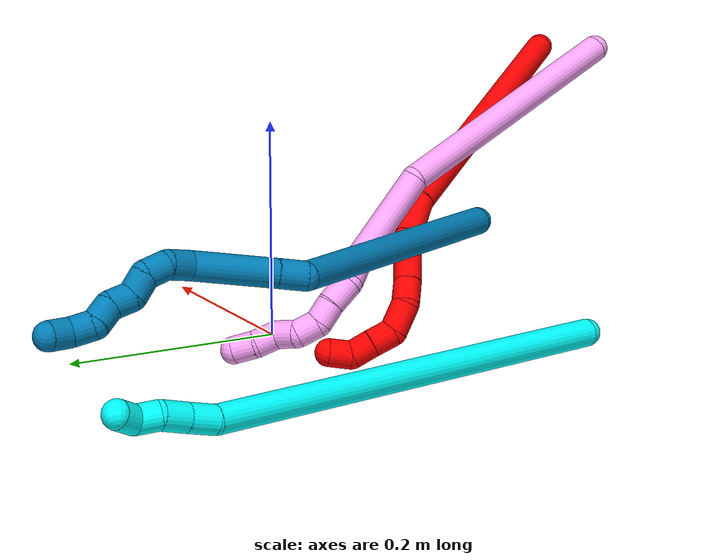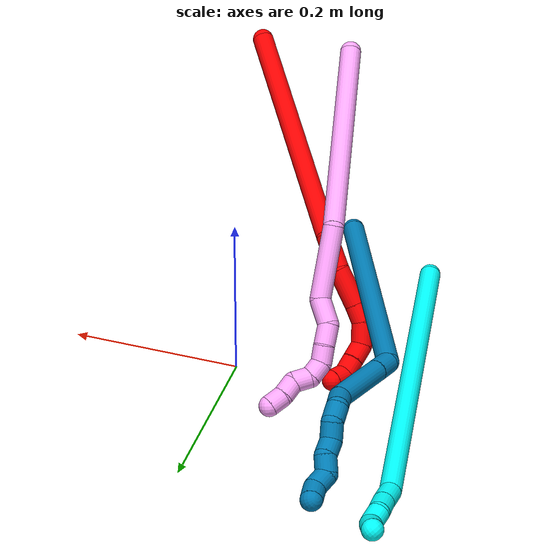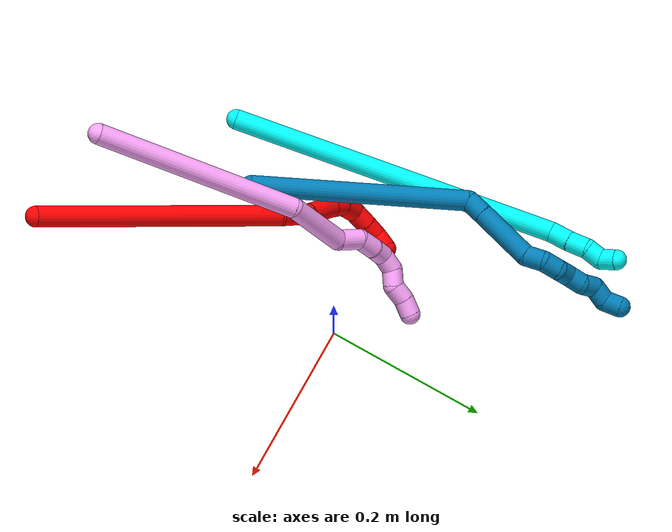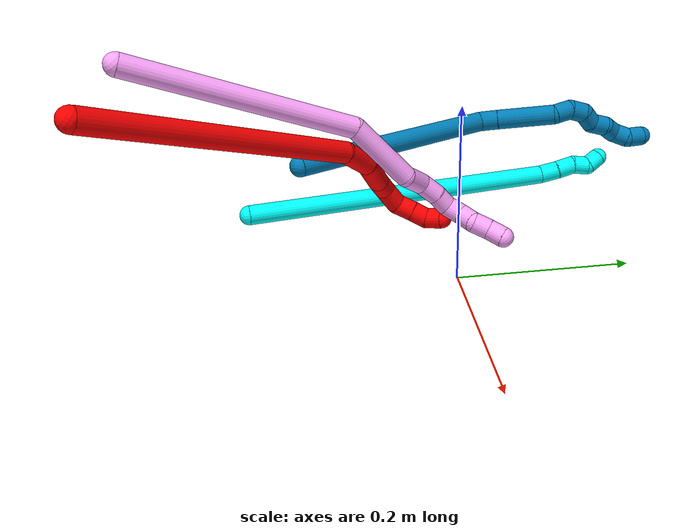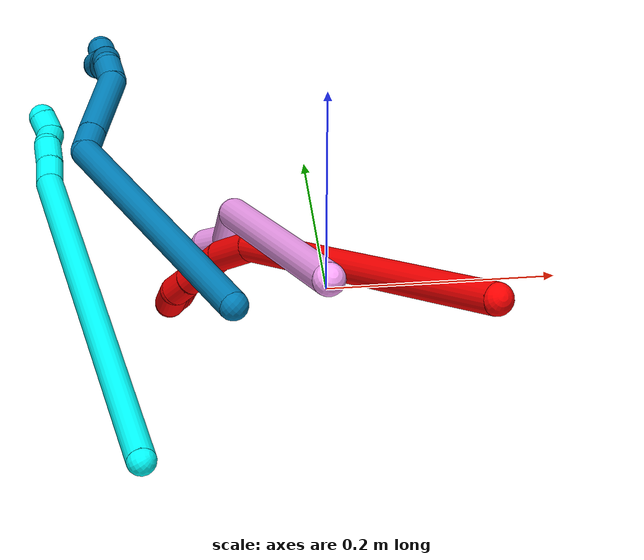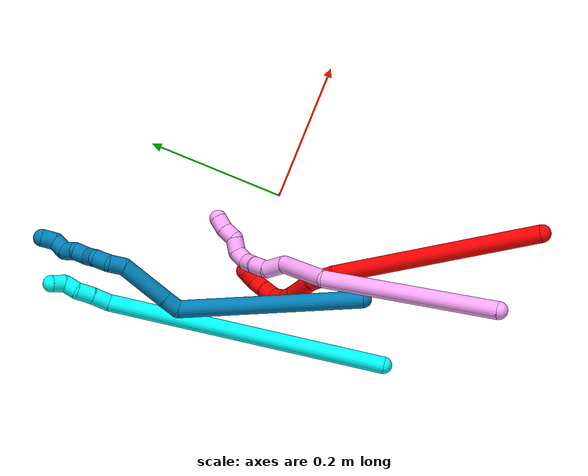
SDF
<sdf version="1.7">
 <world name="default">
  <model name="2">
   <static>0</static>
   <link name="2">
    <collision name="collision-cylinder-e_1_1_4">
     <pose>-0.041145 0.048538 -0.135997 -2.79878 -0.27758 1.35794</pose>
     <geometry><cylinder><radius>0.0125</radius><length>0.300294</length></cylinder></geometry>
     <surface>
      <friction><ode><mu>1.16</mu><mu2>1.16</mu2><slip1>0</slip1><slip2>0</slip2></ode></friction>
      <contact><ode><kp>1e+06</kp><kd>1</kd><max_vel>0</max_vel><min_depth>0.001</min_depth></ode></contact>
     </surface>
    </collision>
    <visual name="visual-cylinder-e_1_1_4">
     <pose>-0.041145 0.048538 -0.135997 -2.79878 -0.27758 1.35794</pose>
     <geometry><cylinder><radius>0.0125</radius><length>0.300294</length></cylinder></geometry>
     <material><ambient>1 0 0 1</ambient></material>
    </visual>
    <collision name="collision-cylinder-e_2_4_5">
     <pose>-0.088996 0.097615 -0.292466 -3.11529 -0.316472 2.9771</pose>
     <geometry><cylinder><radius>0.0125</radius><length>0.043097</length></cylinder></geometry>
     <surface>
      <friction><ode><mu>1.16</mu><mu2>1.16</mu2><slip1>0</slip1><slip2>0</slip2></ode></friction>
      <contact><ode><kp>1e+06</kp><kd>1</kd><max_vel>0</max_vel><min_depth>0.001</min_depth></ode></contact>
     </surface>
    </collision>
    <visual name="visual-cylinder-e_2_4_5">
     <pose>-0.088996 0.097615 -0.292466 -3.11529 -0.316472 2.9771</pose>
     <geometry><cylinder><radius>0.0125</radius><length>0.043097</length></cylinder></geometry>
     <material><ambient>1 0 0 1</ambient></material>
    </visual>
    <collision name="collision-cylinder-e_3_5_6">
     <pose>-0.104742 0.092262 -0.332932 2.85507 -0.409205 -1.92666</pose>
     <geometry><cylinder><radius>0.0125</radius><length>0.04544</length></cylinder></geometry>
     <surface>
      <friction><ode><mu>1.16</mu><mu2>1.16</mu2><slip1>0</slip1><slip2>0</slip2></ode></friction>
      <contact><ode><kp>1e+06</kp><kd>1</kd><max_vel>0</max_vel><min_depth>0.001</min_depth></ode></contact>
     </surface>
    </collision>
    <visual name="visual-cylinder-e_3_5_6">
     <pose>-0.104742 0.092262 -0.332932 2.85507 -0.409205 -1.92666</pose>
     <geometry><cylinder><radius>0.0125</radius><length>0.04544</length></cylinder></geometry>
     <material><ambient>1 0 0 1</ambient></material>
    </visual>
    <collision name="collision-cylinder-e_4_6_7">
     <pose>-0.117583 0.084042 -0.36287 2.91145 -0.356357 -2.00041</pose>
     <geometry><cylinder><radius>0.0125</radius><length>0.021795</length></cylinder></geometry>
     <surface>
      <friction><ode><mu>1.16</mu><mu2>1.16</mu2><slip1>0</slip1><slip2>0</slip2></ode></friction>
      <contact><ode><kp>1e+06</kp><kd>1</kd><max_vel>0</max_vel><min_depth>0.001</min_depth></ode></contact>
     </surface>
    </collision>
    <visual name="visual-cylinder-e_4_6_7">
     <pose>-0.117583 0.084042 -0.36287 2.91145 -0.356357 -2.00041</pose>
     <geometry><cylinder><radius>0.0125</radius><length>0.021795</length></cylinder></geometry>
     <material><ambient>1 0 0 1</ambient></material>
    </visual>
    <collision name="collision-cylinder-e_5_7_8">
     <pose>-0.12054 0.07869 -0.386181 2.91926 0.061577 0.538406</pose>
     <geometry><cylinder><radius>0.0125</radius><length>0.027463</length></cylinder></geometry>
     <surface>
      <friction><ode><mu>1.16</mu><mu2>1.16</mu2><slip1>0</slip1><slip2>0</slip2></ode></friction>
      <contact><ode><kp>1e+06</kp><kd>1</kd><max_vel>0</max_vel><min_depth>0.001</min_depth></ode></contact>
     </surface>
    </collision>
    <visual name="visual-cylinder-e_5_7_8">
     <pose>-0.12054 0.07869 -0.386181 2.91926 0.061577 0.538406</pose>
     <geometry><cylinder><radius>0.0125</radius><length>0.027463</length></cylinder></geometry>
     <material><ambient>1 0 0 1</ambient></material>
    </visual>
    <collision name="collision-cylinder-e_6_8_9">
     <pose>-0.114555 0.078384 -0.40863 -2.85091 0.49689 -2.09493</pose>
     <geometry><cylinder><radius>0.0125</radius><length>0.021565</length></cylinder></geometry>
     <surface>
      <friction><ode><mu>1.16</mu><mu2>1.16</mu2><slip1>0</slip1><slip2>0</slip2></ode></friction>
      <contact><ode><kp>1e+06</kp><kd>1</kd><max_vel>0</max_vel><min_depth>0.001</min_depth></ode></contact>
     </surface>
    </collision>
    <visual name="visual-cylinder-e_6_8_9">
     <pose>-0.114555 0.078384 -0.40863 -2.85091 0.49689 -2.09493</pose>
     <geometry><cylinder><radius>0.0125</radius><length>0.021565</length></cylinder></geometry>
     <material><ambient>1 0 0 1</ambient></material>
    </visual>
    <collision name="collision-cylinder-e_7_9_10">
     <pose>-0.104526 0.083137 -0.426276 -2.90824 0.506941 -2.29178</pose>
     <geometry><cylinder><radius>0.0125</radius><length>0.02014</length></cylinder></geometry>
     <surface>
      <friction><ode><mu>1.16</mu><mu2>1.16</mu2><slip1>0</slip1><slip2>0</slip2></ode></friction>
      <contact><ode><kp>1e+06</kp><kd>1</kd><max_vel>0</max_vel><min_depth>0.001</min_depth></ode></contact>
     </surface>
    </collision>
    <visual name="visual-cylinder-e_7_9_10">
     <pose>-0.104526 0.083137 -0.426276 -2.90824 0.506941 -2.29178</pose>
     <geometry><cylinder><radius>0.0125</radius><length>0.02014</length></cylinder></geometry>
     <material><ambient>1 0 0 1</ambient></material>
    </visual>
    <collision name="collision-cylinder-e_8_10_2">
     <pose>-0.093223 0.091677 -0.439157 -2.15672 0.68779 -1.17716</pose>
     <geometry><cylinder><radius>0.0125</radius><length>0.020207</length></cylinder></geometry>
     <surface>
      <friction><ode><mu>1.16</mu><mu2>1.16</mu2><slip1>0</slip1><slip2>0</slip2></ode></friction>
      <contact><ode><kp>1e+06</kp><kd>1</kd><max_vel>0</max_vel><min_depth>0.001</min_depth></ode></contact>
     </surface>
    </collision>
    <visual name="visual-cylinder-e_8_10_2">
     <pose>-0.093223 0.091677 -0.439157 -2.15672 0.68779 -1.17716</pose>
     <geometry><cylinder><radius>0.0125</radius><length>0.020207</length></cylinder></geometry>
     <material><ambient>1 0 0 1</ambient></material>
    </visual>
    <collision name="collision-sphere-2">
     <pose>-0.086809 0.098181 -0.443474 0 -0 0</pose>
     <geometry><sphere><radius>0.0125</radius></sphere></geometry>
     <surface>
      <friction><ode><mu>1.16</mu><mu2>1.16</mu2><slip1>0</slip1><slip2>0</slip2></ode></friction>
      <contact><ode><kp>1e+06</kp><kd>1</kd><max_vel>0</max_vel><min_depth>0.001</min_depth></ode></contact>
     </surface>
    </collision>
    <visual name="visual-sphere-2">
     <pose>-0.086809 0.098181 -0.443474 0 -0 0</pose>
     <geometry><sphere><radius>0.0125</radius></sphere></geometry>
     <material><ambient>1 0 0 1</ambient></material>
    </visual>
    <collision name="collision-sphere-10">
     <pose>-0.099637 0.085172 -0.434841 0 -0 0</pose>
     <geometry><sphere><radius>0.0125</radius></sphere></geometry>
     <surface>
      <friction><ode><mu>1.16</mu><mu2>1.16</mu2><slip1>0</slip1><slip2>0</slip2></ode></friction>
      <contact><ode><kp>1e+06</kp><kd>1</kd><max_vel>0</max_vel><min_depth>0.001</min_depth></ode></contact>
     </surface>
    </collision>
    <visual name="visual-sphere-10">
     <pose>-0.099637 0.085172 -0.434841 0 -0 0</pose>
     <geometry><sphere><radius>0.0125</radius></sphere></geometry>
     <material><ambient>1 0 0 1</ambient></material>
    </visual>
    <collision name="collision-sphere-9">
     <pose>-0.109415 0.081101 -0.417711 0 -0 0</pose>
     <geometry><sphere><radius>0.0125</radius></sphere></geometry>
     <surface>
      <friction><ode><mu>1.16</mu><mu2>1.16</mu2><slip1>0</slip1><slip2>0</slip2></ode></friction>
      <contact><ode><kp>1e+06</kp><kd>1</kd><max_vel>0</max_vel><min_depth>0.001</min_depth></ode></contact>
     </surface>
    </collision>
    <visual name="visual-sphere-9">
     <pose>-0.109415 0.081101 -0.417711 0 -0 0</pose>
     <geometry><sphere><radius>0.0125</radius></sphere></geometry>
     <material><ambient>1 0 0 1</ambient></material>
    </visual>
    <collision name="collision-sphere-4">
     <pose>-0.082289 0.097076 -0.271995 0 -0 0</pose>
     <geometry><sphere><radius>0.0125</radius></sphere></geometry>
     <surface>
      <friction><ode><mu>1.16</mu><mu2>1.16</mu2><slip1>0</slip1><slip2>0</slip2></ode></friction>
      <contact><ode><kp>1e+06</kp><kd>1</kd><max_vel>0</max_vel><min_depth>0.001</min_depth></ode></contact>
     </surface>
    </collision>
    <visual name="visual-sphere-4">
     <pose>-0.082289 0.097076 -0.271995 0 -0 0</pose>
     <geometry><sphere><radius>0.0125</radius></sphere></geometry>
     <material><ambient>1 0 0 1</ambient></material>
    </visual>
    <collision name="collision-sphere-1">
     <geometry><sphere><radius>0.0125</radius></sphere></geometry>
     <surface>
      <friction><ode><mu>1.16</mu><mu2>1.16</mu2><slip1>0</slip1><slip2>0</slip2></ode></friction>
      <contact><ode><kp>1e+06</kp><kd>1</kd><max_vel>0</max_vel><min_depth>0.001</min_depth></ode></contact>
     </surface>
    </collision>
    <visual name="visual-sphere-1">
     <geometry><sphere><radius>0.0125</radius></sphere></geometry>
     <material><ambient>1 0 0 1</ambient></material>
    </visual>
    <collision name="collision-sphere-8">
     <pose>-0.119695 0.075668 -0.399549 0 -0 0</pose>
     <geometry><sphere><radius>0.0125</radius></sphere></geometry>
     <surface>
      <friction><ode><mu>1.16</mu><mu2>1.16</mu2><slip1>0</slip1><slip2>0</slip2></ode></friction>
      <contact><ode><kp>1e+06</kp><kd>1</kd><max_vel>0</max_vel><min_depth>0.001</min_depth></ode></contact>
     </surface>
    </collision>
    <visual name="visual-sphere-8">
     <pose>-0.119695 0.075668 -0.399549 0 -0 0</pose>
     <geometry><sphere><radius>0.0125</radius></sphere></geometry>
     <material><ambient>1 0 0 1</ambient></material>
    </visual>
    <collision name="collision-sphere-5">
     <pose>-0.095702 0.098153 -0.312937 0 -0 0</pose>
     <geometry><sphere><radius>0.0125</radius></sphere></geometry>
     <surface>
      <friction><ode><mu>1.16</mu><mu2>1.16</mu2><slip1>0</slip1><slip2>0</slip2></ode></friction>
      <contact><ode><kp>1e+06</kp><kd>1</kd><max_vel>0</max_vel><min_depth>0.001</min_depth></ode></contact>
     </surface>
    </collision>
    <visual name="visual-sphere-5">
     <pose>-0.095702 0.098153 -0.312937 0 -0 0</pose>
     <geometry><sphere><radius>0.0125</radius></sphere></geometry>
     <material><ambient>1 0 0 1</ambient></material>
    </visual>
    <collision name="collision-sphere-6">
     <pose>-0.113782 0.086371 -0.352926 0 -0 0</pose>
     <geometry><sphere><radius>0.0125</radius></sphere></geometry>
     <surface>
      <friction><ode><mu>1.16</mu><mu2>1.16</mu2><slip1>0</slip1><slip2>0</slip2></ode></friction>
      <contact><ode><kp>1e+06</kp><kd>1</kd><max_vel>0</max_vel><min_depth>0.001</min_depth></ode></contact>
     </surface>
    </collision>
    <visual name="visual-sphere-6">
     <pose>-0.113782 0.086371 -0.352926 0 -0 0</pose>
     <geometry><sphere><radius>0.0125</radius></sphere></geometry>
     <material><ambient>1 0 0 1</ambient></material>
    </visual>
    <collision name="collision-sphere-7">
     <pose>-0.121385 0.081712 -0.372813 0 -0 0</pose>
     <geometry><sphere><radius>0.0125</radius></sphere></geometry>
     <surface>
      <friction><ode><mu>1.16</mu><mu2>1.16</mu2><slip1>0</slip1><slip2>0</slip2></ode></friction>
      <contact><ode><kp>1e+06</kp><kd>1</kd><max_vel>0</max_vel><min_depth>0.001</min_depth></ode></contact>
     </surface>
    </collision>
    <visual name="visual-sphere-7">
     <pose>-0.121385 0.081712 -0.372813 0 -0 0</pose>
     <geometry><sphere><radius>0.0125</radius></sphere></geometry>
     <material><ambient>1 0 0 1</ambient></material>
    </visual>
    <inertial>
     <pose>-0.066565 0.06437 -0.226715 0 -0 0</pose>
     <mass>0.5</mass>
     <inertia>
      <ixx>0.002566</ixx>
      <ixy>0</ixy>
      <ixz>0</ixz>
      <iyy>0.001896</iyy>
      <iyz>0</iyz>
      <izz>-0.00014</izz>
     </inertia>
    </inertial>
   </link>
   <pose>0.082512 -0.347604 0.234108 0.828165 0.079905 0.260258</pose>
  </model>
  <model name="3">
   <static>0</static>
   <link name="3">
    <collision name="collision-cylinder-e_1_1_4">
     <pose>0.010489 0.190423 0.073465 -1.20259 0.051345 -0.035229</pose>
     <geometry><cylinder><radius>0.0125</radius><length>0.408744</length></cylinder></geometry>
     <surface>
      <friction><ode><mu>1.16</mu><mu2>1.16</mu2><slip1>0</slip1><slip2>0</slip2></ode></friction>
      <contact><ode><kp>1e+06</kp><kd>1</kd><max_vel>0</max_vel><min_depth>0.001</min_depth></ode></contact>
     </surface>
    </collision>
    <visual name="visual-cylinder-e_1_1_4">
     <pose>0.010489 0.190423 0.073465 -1.20259 0.051345 -0.035229</pose>
     <geometry><cylinder><radius>0.0125</radius><length>0.408744</length></cylinder></geometry>
     <material><ambient>0.003922 1 0.996078 1</ambient></material>
    </visual>
    <collision name="collision-cylinder-e_2_4_5">
     <pose>0.022281 0.393508 0.147971 -1.48882 0.102191 -0.094152</pose>
     <geometry><cylinder><radius>0.0125</radius><length>0.025544</length></cylinder></geometry>
     <surface>
      <friction><ode><mu>1.16</mu><mu2>1.16</mu2><slip1>0</slip1><slip2>0</slip2></ode></friction>
      <contact><ode><kp>1e+06</kp><kd>1</kd><max_vel>0</max_vel><min_depth>0.001</min_depth></ode></contact>
     </surface>
    </collision>
    <visual name="visual-cylinder-e_2_4_5">
     <pose>0.022281 0.393508 0.147971 -1.48882 0.102191 -0.094152</pose>
     <geometry><cylinder><radius>0.0125</radius><length>0.025544</length></cylinder></geometry>
     <material><ambient>0.003922 1 0.996078 1</ambient></material>
    </visual>
    <collision name="collision-cylinder-e_3_5_6">
     <pose>0.02579 0.418135 0.150514 -1.44586 0.181021 -0.159805</pose>
     <geometry><cylinder><radius>0.0125</radius><length>0.024516</length></cylinder></geometry>
     <surface>
      <friction><ode><mu>1.16</mu><mu2>1.16</mu2><slip1>0</slip1><slip2>0</slip2></ode></friction>
      <contact><ode><kp>1e+06</kp><kd>1</kd><max_vel>0</max_vel><min_depth>0.001</min_depth></ode></contact>
     </surface>
    </collision>
    <visual name="visual-cylinder-e_3_5_6">
     <pose>0.02579 0.418135 0.150514 -1.44586 0.181021 -0.159805</pose>
     <geometry><cylinder><radius>0.0125</radius><length>0.024516</length></cylinder></geometry>
     <material><ambient>0.003922 1 0.996078 1</ambient></material>
    </visual>
    <collision name="collision-cylinder-e_4_6_7">
     <pose>0.025843 0.439979 0.153786 -1.39352 -0.211477 0.177154</pose>
     <geometry><cylinder><radius>0.0125</radius><length>0.020532</length></cylinder></geometry>
     <surface>
      <friction><ode><mu>1.16</mu><mu2>1.16</mu2><slip1>0</slip1><slip2>0</slip2></ode></friction>
      <contact><ode><kp>1e+06</kp><kd>1</kd><max_vel>0</max_vel><min_depth>0.001</min_depth></ode></contact>
     </surface>
    </collision>
    <visual name="visual-cylinder-e_4_6_7">
     <pose>0.025843 0.439979 0.153786 -1.39352 -0.211477 0.177154</pose>
     <geometry><cylinder><radius>0.0125</radius><length>0.020532</length></cylinder></geometry>
     <material><ambient>0.003922 1 0.996078 1</ambient></material>
    </visual>
    <collision name="collision-cylinder-e_5_7_2">
     <pose>0.02897 0.458527 0.157479 -1.35247 0.536656 -0.434324</pose>
     <geometry><cylinder><radius>0.0125</radius><length>0.020664</length></cylinder></geometry>
     <surface>
      <friction><ode><mu>1.16</mu><mu2>1.16</mu2><slip1>0</slip1><slip2>0</slip2></ode></friction>
      <contact><ode><kp>1e+06</kp><kd>1</kd><max_vel>0</max_vel><min_depth>0.001</min_depth></ode></contact>
     </surface>
    </collision>
    <visual name="visual-cylinder-e_5_7_2">
     <pose>0.02897 0.458527 0.157479 -1.35247 0.536656 -0.434324</pose>
     <geometry><cylinder><radius>0.0125</radius><length>0.020664</length></cylinder></geometry>
     <material><ambient>0.003922 1 0.996078 1</ambient></material>
    </visual>
    <collision name="collision-sphere-2">
     <pose>0.034252 0.467196 0.159403 0 -0 0</pose>
     <geometry><sphere><radius>0.0125</radius></sphere></geometry>
     <surface>
      <friction><ode><mu>1.16</mu><mu2>1.16</mu2><slip1>0</slip1><slip2>0</slip2></ode></friction>
      <contact><ode><kp>1e+06</kp><kd>1</kd><max_vel>0</max_vel><min_depth>0.001</min_depth></ode></contact>
     </surface>
    </collision>
    <visual name="visual-sphere-2">
     <pose>0.034252 0.467196 0.159403 0 -0 0</pose>
     <geometry><sphere><radius>0.0125</radius></sphere></geometry>
     <material><ambient>0.003922 1 0.996078 1</ambient></material>
    </visual>
    <collision name="collision-sphere-7">
     <pose>0.023688 0.449858 0.155556 0 -0 0</pose>
     <geometry><sphere><radius>0.0125</radius></sphere></geometry>
     <surface>
      <friction><ode><mu>1.16</mu><mu2>1.16</mu2><slip1>0</slip1><slip2>0</slip2></ode></friction>
      <contact><ode><kp>1e+06</kp><kd>1</kd><max_vel>0</max_vel><min_depth>0.001</min_depth></ode></contact>
     </surface>
    </collision>
    <visual name="visual-sphere-7">
     <pose>0.023688 0.449858 0.155556 0 -0 0</pose>
     <geometry><sphere><radius>0.0125</radius></sphere></geometry>
     <material><ambient>0.003922 1 0.996078 1</ambient></material>
    </visual>
    <collision name="collision-sphere-6">
     <pose>0.027997 0.430099 0.152016 0 -0 0</pose>
     <geometry><sphere><radius>0.0125</radius></sphere></geometry>
     <surface>
      <friction><ode><mu>1.16</mu><mu2>1.16</mu2><slip1>0</slip1><slip2>0</slip2></ode></friction>
      <contact><ode><kp>1e+06</kp><kd>1</kd><max_vel>0</max_vel><min_depth>0.001</min_depth></ode></contact>
     </surface>
    </collision>
    <visual name="visual-sphere-6">
     <pose>0.027997 0.430099 0.152016 0 -0 0</pose>
     <geometry><sphere><radius>0.0125</radius></sphere></geometry>
     <material><ambient>0.003922 1 0.996078 1</ambient></material>
    </visual>
    <collision name="collision-sphere-5">
     <pose>0.023584 0.406171 0.149011 0 -0 0</pose>
     <geometry><sphere><radius>0.0125</radius></sphere></geometry>
     <surface>
      <friction><ode><mu>1.16</mu><mu2>1.16</mu2><slip1>0</slip1><slip2>0</slip2></ode></friction>
      <contact><ode><kp>1e+06</kp><kd>1</kd><max_vel>0</max_vel><min_depth>0.001</min_depth></ode></contact>
     </surface>
    </collision>
    <visual name="visual-sphere-5">
     <pose>0.023584 0.406171 0.149011 0 -0 0</pose>
     <geometry><sphere><radius>0.0125</radius></sphere></geometry>
     <material><ambient>0.003922 1 0.996078 1</ambient></material>
    </visual>
    <collision name="collision-sphere-1">
     <geometry><sphere><radius>0.0125</radius></sphere></geometry>
     <surface>
      <friction><ode><mu>1.16</mu><mu2>1.16</mu2><slip1>0</slip1><slip2>0</slip2></ode></friction>
      <contact><ode><kp>1e+06</kp><kd>1</kd><max_vel>0</max_vel><min_depth>0.001</min_depth></ode></contact>
     </surface>
    </collision>
    <visual name="visual-sphere-1">
     <geometry><sphere><radius>0.0125</radius></sphere></geometry>
     <material><ambient>0.003922 1 0.996078 1</ambient></material>
    </visual>
    <collision name="collision-sphere-4">
     <pose>0.020978 0.380845 0.14693 0 -0 0</pose>
     <geometry><sphere><radius>0.0125</radius></sphere></geometry>
     <surface>
      <friction><ode><mu>1.16</mu><mu2>1.16</mu2><slip1>0</slip1><slip2>0</slip2></ode></friction>
      <contact><ode><kp>1e+06</kp><kd>1</kd><max_vel>0</max_vel><min_depth>0.001</min_depth></ode></contact>
     </surface>
    </collision>
    <visual name="visual-sphere-4">
     <pose>0.020978 0.380845 0.14693 0 -0 0</pose>
     <geometry><sphere><radius>0.0125</radius></sphere></geometry>
     <material><ambient>0.003922 1 0.996078 1</ambient></material>
    </visual>
    <inertial>
     <pose>0.013236 0.233291 0.08782 0 -0 0</pose>
     <mass>0.5</mass>
     <inertia>
      <ixx>0.005504</ixx>
      <ixy>0</ixy>
      <ixz>0</ixz>
      <iyy>0.001899</iyy>
      <iyz>0</iyz>
      <izz>-0.005606</izz>
     </inertia>
    </inertial>
   </link>
   <pose>-0.171141 -0.23284 0.012406 2.83517 -0.876512 -3.05988</pose>
  </model>
  <model name="4">
   <static>0</static>
   <link name="4">
    <collision name="collision-cylinder-e_1_1_4">
     <pose>-0.034417 0.057934 -0.107611 -2.64772 -0.274499 1.00248</pose>
     <geometry><cylinder><radius>0.0125</radius><length>0.253938</length></cylinder></geometry>
     <surface>
      <friction><ode><mu>1.16</mu><mu2>1.16</mu2><slip1>0</slip1><slip2>0</slip2></ode></friction>
      <contact><ode><kp>1e+06</kp><kd>1</kd><max_vel>0</max_vel><min_depth>0.001</min_depth></ode></contact>
     </surface>
    </collision>
    <visual name="visual-cylinder-e_1_1_4">
     <pose>-0.034417 0.057934 -0.107611 -2.64772 -0.274499 1.00248</pose>
     <geometry><cylinder><radius>0.0125</radius><length>0.253938</length></cylinder></geometry>
     <material><ambient>1 0.65098 0.996078 1</ambient></material>
    </visual>
    <collision name="collision-cylinder-e_2_4_5">
     <pose>-0.06467 0.124035 -0.257479 -2.9507 0.096441 -0.933776</pose>
     <geometry><cylinder><radius>0.0125</radius><length>0.086478</length></cylinder></geometry>
     <surface>
      <friction><ode><mu>1.16</mu><mu2>1.16</mu2><slip1>0</slip1><slip2>0</slip2></ode></friction>
      <contact><ode><kp>1e+06</kp><kd>1</kd><max_vel>0</max_vel><min_depth>0.001</min_depth></ode></contact>
     </surface>
    </collision>
    <visual name="visual-cylinder-e_2_4_5">
     <pose>-0.06467 0.124035 -0.257479 -2.9507 0.096441 -0.933776</pose>
     <geometry><cylinder><radius>0.0125</radius><length>0.086478</length></cylinder></geometry>
     <material><ambient>1 0.65098 0.996078 1</ambient></material>
    </visual>
    <collision name="collision-cylinder-e_3_5_6">
     <pose>-0.066947 0.132728 -0.314319 -3.10546 -0.415623 2.97065</pose>
     <geometry><cylinder><radius>0.0125</radius><length>0.031903</length></cylinder></geometry>
     <surface>
      <friction><ode><mu>1.16</mu><mu2>1.16</mu2><slip1>0</slip1><slip2>0</slip2></ode></friction>
      <contact><ode><kp>1e+06</kp><kd>1</kd><max_vel>0</max_vel><min_depth>0.001</min_depth></ode></contact>
     </surface>
    </collision>
    <visual name="visual-cylinder-e_3_5_6">
     <pose>-0.066947 0.132728 -0.314319 -3.10546 -0.415623 2.97065</pose>
     <geometry><cylinder><radius>0.0125</radius><length>0.031903</length></cylinder></geometry>
     <material><ambient>1 0.65098 0.996078 1</ambient></material>
    </visual>
    <collision name="collision-cylinder-e_4_6_7">
     <pose>-0.072967 0.13688 -0.340905 -2.8483 0.033502 -0.225874</pose>
     <geometry><cylinder><radius>0.0125</radius><length>0.02509</length></cylinder></geometry>
     <surface>
      <friction><ode><mu>1.16</mu><mu2>1.16</mu2><slip1>0</slip1><slip2>0</slip2></ode></friction>
      <contact><ode><kp>1e+06</kp><kd>1</kd><max_vel>0</max_vel><min_depth>0.001</min_depth></ode></contact>
     </surface>
    </collision>
    <visual name="visual-cylinder-e_4_6_7">
     <pose>-0.072967 0.13688 -0.340905 -2.8483 0.033502 -0.225874</pose>
     <geometry><cylinder><radius>0.0125</radius><length>0.02509</length></cylinder></geometry>
     <material><ambient>1 0.65098 0.996078 1</ambient></material>
    </visual>
    <collision name="collision-cylinder-e_5_7_8">
     <pose>-0.071345 0.142044 -0.363005 -2.9903 0.117189 -1.31737</pose>
     <geometry><cylinder><radius>0.0125</radius><length>0.020568</length></cylinder></geometry>
     <surface>
      <friction><ode><mu>1.16</mu><mu2>1.16</mu2><slip1>0</slip1><slip2>0</slip2></ode></friction>
      <contact><ode><kp>1e+06</kp><kd>1</kd><max_vel>0</max_vel><min_depth>0.001</min_depth></ode></contact>
     </surface>
    </collision>
    <visual name="visual-cylinder-e_5_7_8">
     <pose>-0.071345 0.142044 -0.363005 -2.9903 0.117189 -1.31737</pose>
     <geometry><cylinder><radius>0.0125</radius><length>0.020568</length></cylinder></geometry>
     <material><ambient>1 0.65098 0.996078 1</ambient></material>
    </visual>
    <collision name="collision-cylinder-e_6_8_9">
     <pose>-0.067363 0.149835 -0.380723 -2.45458 0.274827 -0.737823</pose>
     <geometry><cylinder><radius>0.0125</radius><length>0.020485</length></cylinder></geometry>
     <surface>
      <friction><ode><mu>1.16</mu><mu2>1.16</mu2><slip1>0</slip1><slip2>0</slip2></ode></friction>
      <contact><ode><kp>1e+06</kp><kd>1</kd><max_vel>0</max_vel><min_depth>0.001</min_depth></ode></contact>
     </surface>
    </collision>
    <visual name="visual-cylinder-e_6_8_9">
     <pose>-0.067363 0.149835 -0.380723 -2.45458 0.274827 -0.737823</pose>
     <geometry><cylinder><radius>0.0125</radius><length>0.020485</length></cylinder></geometry>
     <material><ambient>1 0.65098 0.996078 1</ambient></material>
    </visual>
    <collision name="collision-cylinder-e_7_9_10">
     <pose>-0.058083 0.163727 -0.391054 -1.91169 0.675893 -0.923374</pose>
     <geometry><cylinder><radius>0.0125</radius><length>0.020779</length></cylinder></geometry>
     <surface>
      <friction><ode><mu>1.16</mu><mu2>1.16</mu2><slip1>0</slip1><slip2>0</slip2></ode></friction>
      <contact><ode><kp>1e+06</kp><kd>1</kd><max_vel>0</max_vel><min_depth>0.001</min_depth></ode></contact>
     </surface>
    </collision>
    <visual name="visual-cylinder-e_7_9_10">
     <pose>-0.058083 0.163727 -0.391054 -1.91169 0.675893 -0.923374</pose>
     <geometry><cylinder><radius>0.0125</radius><length>0.020779</length></cylinder></geometry>
     <material><ambient>1 0.65098 0.996078 1</ambient></material>
    </visual>
    <collision name="collision-cylinder-e_8_10_11">
     <pose>-0.049643 0.178158 -0.401313 -2.40888 0.18886 -0.484031</pose>
     <geometry><cylinder><radius>0.0125</radius><length>0.020678</length></cylinder></geometry>
     <surface>
      <friction><ode><mu>1.16</mu><mu2>1.16</mu2><slip1>0</slip1><slip2>0</slip2></ode></friction>
      <contact><ode><kp>1e+06</kp><kd>1</kd><max_vel>0</max_vel><min_depth>0.001</min_depth></ode></contact>
     </surface>
    </collision>
    <visual name="visual-cylinder-e_8_10_11">
     <pose>-0.049643 0.178158 -0.401313 -2.40888 0.18886 -0.484031</pose>
     <geometry><cylinder><radius>0.0125</radius><length>0.020678</length></cylinder></geometry>
     <material><ambient>1 0.65098 0.996078 1</ambient></material>
    </visual>
    <collision name="collision-cylinder-e_9_11_2">
     <pose>-0.043678 0.192299 -0.414396 -2.21629 0.412304 -0.794045</pose>
     <geometry><cylinder><radius>0.0125</radius><length>0.020082</length></cylinder></geometry>
     <surface>
      <friction><ode><mu>1.16</mu><mu2>1.16</mu2><slip1>0</slip1><slip2>0</slip2></ode></friction>
      <contact><ode><kp>1e+06</kp><kd>1</kd><max_vel>0</max_vel><min_depth>0.001</min_depth></ode></contact>
     </surface>
    </collision>
    <visual name="visual-cylinder-e_9_11_2">
     <pose>-0.043678 0.192299 -0.414396 -2.21629 0.412304 -0.794045</pose>
     <geometry><cylinder><radius>0.0125</radius><length>0.020082</length></cylinder></geometry>
     <material><ambient>1 0.65098 0.996078 1</ambient></material>
    </visual>
    <collision name="collision-sphere-2">
     <pose>-0.039654 0.199648 -0.419931 0 -0 0</pose>
     <geometry><sphere><radius>0.0125</radius></sphere></geometry>
     <surface>
      <friction><ode><mu>1.16</mu><mu2>1.16</mu2><slip1>0</slip1><slip2>0</slip2></ode></friction>
      <contact><ode><kp>1e+06</kp><kd>1</kd><max_vel>0</max_vel><min_depth>0.001</min_depth></ode></contact>
     </surface>
    </collision>
    <visual name="visual-sphere-2">
     <pose>-0.039654 0.199648 -0.419931 0 -0 0</pose>
     <geometry><sphere><radius>0.0125</radius></sphere></geometry>
     <material><ambient>1 0.65098 0.996078 1</ambient></material>
    </visual>
    <collision name="collision-sphere-11">
     <pose>-0.047702 0.184951 -0.408862 0 -0 0</pose>
     <geometry><sphere><radius>0.0125</radius></sphere></geometry>
     <surface>
      <friction><ode><mu>1.16</mu><mu2>1.16</mu2><slip1>0</slip1><slip2>0</slip2></ode></friction>
      <contact><ode><kp>1e+06</kp><kd>1</kd><max_vel>0</max_vel><min_depth>0.001</min_depth></ode></contact>
     </surface>
    </collision>
    <visual name="visual-sphere-11">
     <pose>-0.047702 0.184951 -0.408862 0 -0 0</pose>
     <geometry><sphere><radius>0.0125</radius></sphere></geometry>
     <material><ambient>1 0.65098 0.996078 1</ambient></material>
    </visual>
    <collision name="collision-sphere-10">
     <pose>-0.051584 0.171366 -0.393764 0 -0 0</pose>
     <geometry><sphere><radius>0.0125</radius></sphere></geometry>
     <surface>
      <friction><ode><mu>1.16</mu><mu2>1.16</mu2><slip1>0</slip1><slip2>0</slip2></ode></friction>
      <contact><ode><kp>1e+06</kp><kd>1</kd><max_vel>0</max_vel><min_depth>0.001</min_depth></ode></contact>
     </surface>
    </collision>
    <visual name="visual-sphere-10">
     <pose>-0.051584 0.171366 -0.393764 0 -0 0</pose>
     <geometry><sphere><radius>0.0125</radius></sphere></geometry>
     <material><ambient>1 0.65098 0.996078 1</ambient></material>
    </visual>
    <collision name="collision-sphere-9">
     <pose>-0.064583 0.156087 -0.388344 0 -0 0</pose>
     <geometry><sphere><radius>0.0125</radius></sphere></geometry>
     <surface>
      <friction><ode><mu>1.16</mu><mu2>1.16</mu2><slip1>0</slip1><slip2>0</slip2></ode></friction>
      <contact><ode><kp>1e+06</kp><kd>1</kd><max_vel>0</max_vel><min_depth>0.001</min_depth></ode></contact>
     </surface>
    </collision>
    <visual name="visual-sphere-9">
     <pose>-0.064583 0.156087 -0.388344 0 -0 0</pose>
     <geometry><sphere><radius>0.0125</radius></sphere></geometry>
     <material><ambient>1 0.65098 0.996078 1</ambient></material>
    </visual>
    <collision name="collision-sphere-4">
     <pose>-0.068834 0.115869 -0.215222 0 -0 0</pose>
     <geometry><sphere><radius>0.0125</radius></sphere></geometry>
     <surface>
      <friction><ode><mu>1.16</mu><mu2>1.16</mu2><slip1>0</slip1><slip2>0</slip2></ode></friction>
      <contact><ode><kp>1e+06</kp><kd>1</kd><max_vel>0</max_vel><min_depth>0.001</min_depth></ode></contact>
     </surface>
    </collision>
    <visual name="visual-sphere-4">
     <pose>-0.068834 0.115869 -0.215222 0 -0 0</pose>
     <geometry><sphere><radius>0.0125</radius></sphere></geometry>
     <material><ambient>1 0.65098 0.996078 1</ambient></material>
    </visual>
    <collision name="collision-sphere-1">
     <geometry><sphere><radius>0.0125</radius></sphere></geometry>
     <surface>
      <friction><ode><mu>1.16</mu><mu2>1.16</mu2><slip1>0</slip1><slip2>0</slip2></ode></friction>
      <contact><ode><kp>1e+06</kp><kd>1</kd><max_vel>0</max_vel><min_depth>0.001</min_depth></ode></contact>
     </surface>
    </collision>
    <visual name="visual-sphere-1">
     <geometry><sphere><radius>0.0125</radius></sphere></geometry>
     <material><ambient>1 0.65098 0.996078 1</ambient></material>
    </visual>
    <collision name="collision-sphere-8">
     <pose>-0.070142 0.143583 -0.373101 0 -0 0</pose>
     <geometry><sphere><radius>0.0125</radius></sphere></geometry>
     <surface>
      <friction><ode><mu>1.16</mu><mu2>1.16</mu2><slip1>0</slip1><slip2>0</slip2></ode></friction>
      <contact><ode><kp>1e+06</kp><kd>1</kd><max_vel>0</max_vel><min_depth>0.001</min_depth></ode></contact>
     </surface>
    </collision>
    <visual name="visual-sphere-8">
     <pose>-0.070142 0.143583 -0.373101 0 -0 0</pose>
     <geometry><sphere><radius>0.0125</radius></sphere></geometry>
     <material><ambient>1 0.65098 0.996078 1</ambient></material>
    </visual>
    <collision name="collision-sphere-5">
     <pose>-0.060506 0.132201 -0.299735 0 -0 0</pose>
     <geometry><sphere><radius>0.0125</radius></sphere></geometry>
     <surface>
      <friction><ode><mu>1.16</mu><mu2>1.16</mu2><slip1>0</slip1><slip2>0</slip2></ode></friction>
      <contact><ode><kp>1e+06</kp><kd>1</kd><max_vel>0</max_vel><min_depth>0.001</min_depth></ode></contact>
     </surface>
    </collision>
    <visual name="visual-sphere-5">
     <pose>-0.060506 0.132201 -0.299735 0 -0 0</pose>
     <geometry><sphere><radius>0.0125</radius></sphere></geometry>
     <material><ambient>1 0.65098 0.996078 1</ambient></material>
    </visual>
    <collision name="collision-sphere-6">
     <pose>-0.073387 0.133255 -0.328903 0 -0 0</pose>
     <geometry><sphere><radius>0.0125</radius></sphere></geometry>
     <surface>
      <friction><ode><mu>1.16</mu><mu2>1.16</mu2><slip1>0</slip1><slip2>0</slip2></ode></friction>
      <contact><ode><kp>1e+06</kp><kd>1</kd><max_vel>0</max_vel><min_depth>0.001</min_depth></ode></contact>
     </surface>
    </collision>
    <visual name="visual-sphere-6">
     <pose>-0.073387 0.133255 -0.328903 0 -0 0</pose>
     <geometry><sphere><radius>0.0125</radius></sphere></geometry>
     <material><ambient>1 0.65098 0.996078 1</ambient></material>
    </visual>
    <collision name="collision-sphere-7">
     <pose>-0.072547 0.140505 -0.352908 0 -0 0</pose>
     <geometry><sphere><radius>0.0125</radius></sphere></geometry>
     <surface>
      <friction><ode><mu>1.16</mu><mu2>1.16</mu2><slip1>0</slip1><slip2>0</slip2></ode></friction>
      <contact><ode><kp>1e+06</kp><kd>1</kd><max_vel>0</max_vel><min_depth>0.001</min_depth></ode></contact>
     </surface>
    </collision>
    <visual name="visual-sphere-7">
     <pose>-0.072547 0.140505 -0.352908 0 -0 0</pose>
     <geometry><sphere><radius>0.0125</radius></sphere></geometry>
     <material><ambient>1 0.65098 0.996078 1</ambient></material>
    </visual>
    <inertial>
     <pose>-0.048513 0.100091 -0.21637 0 -0 0</pose>
     <mass>0.5</mass>
     <inertia>
      <ixx>0.00181</ixx>
      <ixy>0</ixy>
      <ixz>0</ixz>
      <iyy>0.000545</iyy>
      <iyz>0</iyz>
      <izz>-0.00031</izz>
     </inertia>
    </inertial>
   </link>
   <pose>-0.035064 -0.331263 0.247958 0.486753 0.426645 -0.312475</pose>
  </model>
  <model name="9">
   <static>0</static>
   <link name="9">
    <collision name="collision-cylinder-e_1_1_4">
     <pose>-0.020986 0.104875 0.073682 -0.958352 -0.162296 0.084458</pose>
     <geometry><cylinder><radius>0.0125</radius><length>0.259755</length></cylinder></geometry>
     <surface>
      <friction><ode><mu>1.16</mu><mu2>1.16</mu2><slip1>0</slip1><slip2>0</slip2></ode></friction>
      <contact><ode><kp>1e+06</kp><kd>1</kd><max_vel>0</max_vel><min_depth>0.001</min_depth></ode></contact>
     </surface>
    </collision>
    <visual name="visual-cylinder-e_1_1_4">
     <pose>-0.020986 0.104875 0.073682 -0.958352 -0.162296 0.084458</pose>
     <geometry><cylinder><radius>0.0125</radius><length>0.259755</length></cylinder></geometry>
     <material><ambient>0 0.490196 0.709804 1</ambient></material>
    </visual>
    <collision name="collision-cylinder-e_2_4_5">
     <pose>-0.036471 0.220304 0.149891 -1.33571 0.469187 -0.372647</pose>
     <geometry><cylinder><radius>0.0125</radius><length>0.024334</length></cylinder></geometry>
     <surface>
      <friction><ode><mu>1.16</mu><mu2>1.16</mu2><slip1>0</slip1><slip2>0</slip2></ode></friction>
      <contact><ode><kp>1e+06</kp><kd>1</kd><max_vel>0</max_vel><min_depth>0.001</min_depth></ode></contact>
     </surface>
    </collision>
    <visual name="visual-cylinder-e_2_4_5">
     <pose>-0.036471 0.220304 0.149891 -1.33571 0.469187 -0.372647</pose>
     <geometry><cylinder><radius>0.0125</radius><length>0.024334</length></cylinder></geometry>
     <material><ambient>0 0.490196 0.709804 1</ambient></material>
    </visual>
    <collision name="collision-cylinder-e_3_5_6">
     <pose>-0.014424 0.262367 0.159195 -1.35896 0.474271 -0.385612</pose>
     <geometry><cylinder><radius>0.0125</radius><length>0.072457</length></cylinder></geometry>
     <surface>
      <friction><ode><mu>1.16</mu><mu2>1.16</mu2><slip1>0</slip1><slip2>0</slip2></ode></friction>
      <contact><ode><kp>1e+06</kp><kd>1</kd><max_vel>0</max_vel><min_depth>0.001</min_depth></ode></contact>
     </surface>
    </collision>
    <visual name="visual-cylinder-e_3_5_6">
     <pose>-0.014424 0.262367 0.159195 -1.35896 0.474271 -0.385612</pose>
     <geometry><cylinder><radius>0.0125</radius><length>0.072457</length></cylinder></geometry>
     <material><ambient>0 0.490196 0.709804 1</ambient></material>
    </visual>
    <collision name="collision-cylinder-e_4_6_7">
     <pose>0.003945 0.303221 0.171929 -1.00322 0.163125 -0.089596</pose>
     <geometry><cylinder><radius>0.0125</radius><length>0.022462</length></cylinder></geometry>
     <surface>
      <friction><ode><mu>1.16</mu><mu2>1.16</mu2><slip1>0</slip1><slip2>0</slip2></ode></friction>
      <contact><ode><kp>1e+06</kp><kd>1</kd><max_vel>0</max_vel><min_depth>0.001</min_depth></ode></contact>
     </surface>
    </collision>
    <visual name="visual-cylinder-e_4_6_7">
     <pose>0.003945 0.303221 0.171929 -1.00322 0.163125 -0.089596</pose>
     <geometry><cylinder><radius>0.0125</radius><length>0.022462</length></cylinder></geometry>
     <material><ambient>0 0.490196 0.709804 1</ambient></material>
    </visual>
    <collision name="collision-cylinder-e_5_7_8">
     <pose>0.005182 0.322707 0.179084 -1.45334 -0.057398 0.051027</pose>
     <geometry><cylinder><radius>0.0125</radius><length>0.020458</length></cylinder></geometry>
     <surface>
      <friction><ode><mu>1.16</mu><mu2>1.16</mu2><slip1>0</slip1><slip2>0</slip2></ode></friction>
      <contact><ode><kp>1e+06</kp><kd>1</kd><max_vel>0</max_vel><min_depth>0.001</min_depth></ode></contact>
     </surface>
    </collision>
    <visual name="visual-cylinder-e_5_7_8">
     <pose>0.005182 0.322707 0.179084 -1.45334 -0.057398 0.051027</pose>
     <geometry><cylinder><radius>0.0125</radius><length>0.020458</length></cylinder></geometry>
     <material><ambient>0 0.490196 0.709804 1</ambient></material>
    </visual>
    <collision name="collision-cylinder-e_6_8_9">
     <pose>-0.00054 0.341235 0.177914 -1.84578 -0.532469 0.691629</pose>
     <geometry><cylinder><radius>0.0125</radius><length>0.020228</length></cylinder></geometry>
     <surface>
      <friction><ode><mu>1.16</mu><mu2>1.16</mu2><slip1>0</slip1><slip2>0</slip2></ode></friction>
      <contact><ode><kp>1e+06</kp><kd>1</kd><max_vel>0</max_vel><min_depth>0.001</min_depth></ode></contact>
     </surface>
    </collision>
    <visual name="visual-cylinder-e_6_8_9">
     <pose>-0.00054 0.341235 0.177914 -1.84578 -0.532469 0.691629</pose>
     <geometry><cylinder><radius>0.0125</radius><length>0.020228</length></cylinder></geometry>
     <material><ambient>0 0.490196 0.709804 1</ambient></material>
    </visual>
    <collision name="collision-cylinder-e_7_9_10">
     <pose>-0.005759 0.359581 0.176691 -1.45651 -0.008508 0.007587</pose>
     <geometry><cylinder><radius>0.0125</radius><length>0.020049</length></cylinder></geometry>
     <surface>
      <friction><ode><mu>1.16</mu><mu2>1.16</mu2><slip1>0</slip1><slip2>0</slip2></ode></friction>
      <contact><ode><kp>1e+06</kp><kd>1</kd><max_vel>0</max_vel><min_depth>0.001</min_depth></ode></contact>
     </surface>
    </collision>
    <visual name="visual-cylinder-e_7_9_10">
     <pose>-0.005759 0.359581 0.176691 -1.45651 -0.008508 0.007587</pose>
     <geometry><cylinder><radius>0.0125</radius><length>0.020049</length></cylinder></geometry>
     <material><ambient>0 0.490196 0.709804 1</ambient></material>
    </visual>
    <collision name="collision-cylinder-e_8_10_11">
     <pose>-0.010855 0.378214 0.178226 -1.52568 -0.523292 0.501175</pose>
     <geometry><cylinder><radius>0.0125</radius><length>0.020051</length></cylinder></geometry>
     <surface>
      <friction><ode><mu>1.16</mu><mu2>1.16</mu2><slip1>0</slip1><slip2>0</slip2></ode></friction>
      <contact><ode><kp>1e+06</kp><kd>1</kd><max_vel>0</max_vel><min_depth>0.001</min_depth></ode></contact>
     </surface>
    </collision>
    <visual name="visual-cylinder-e_8_10_11">
     <pose>-0.010855 0.378214 0.178226 -1.52568 -0.523292 0.501175</pose>
     <geometry><cylinder><radius>0.0125</radius><length>0.020051</length></cylinder></geometry>
     <material><ambient>0 0.490196 0.709804 1</ambient></material>
    </visual>
    <collision name="collision-cylinder-e_9_11_12">
     <pose>-0.013641 0.396532 0.176901 -1.74704 0.223246 -0.26605</pose>
     <geometry><cylinder><radius>0.0125</radius><length>0.020087</length></cylinder></geometry>
     <surface>
      <friction><ode><mu>1.16</mu><mu2>1.16</mu2><slip1>0</slip1><slip2>0</slip2></ode></friction>
      <contact><ode><kp>1e+06</kp><kd>1</kd><max_vel>0</max_vel><min_depth>0.001</min_depth></ode></contact>
     </surface>
    </collision>
    <visual name="visual-cylinder-e_9_11_12">
     <pose>-0.013641 0.396532 0.176901 -1.74704 0.223246 -0.26605</pose>
     <geometry><cylinder><radius>0.0125</radius><length>0.020087</length></cylinder></geometry>
     <material><ambient>0 0.490196 0.709804 1</ambient></material>
    </visual>
    <collision name="collision-cylinder-e_10_12_2">
     <pose>-0.010721 0.415384 0.17917 -1.16223 0.069362 -0.045565</pose>
     <geometry><cylinder><radius>0.0125</radius><length>0.020118</length></cylinder></geometry>
     <surface>
      <friction><ode><mu>1.16</mu><mu2>1.16</mu2><slip1>0</slip1><slip2>0</slip2></ode></friction>
      <contact><ode><kp>1e+06</kp><kd>1</kd><max_vel>0</max_vel><min_depth>0.001</min_depth></ode></contact>
     </surface>
    </collision>
    <visual name="visual-cylinder-e_10_12_2">
     <pose>-0.010721 0.415384 0.17917 -1.16223 0.069362 -0.045565</pose>
     <geometry><cylinder><radius>0.0125</radius><length>0.020118</length></cylinder></geometry>
     <material><ambient>0 0.490196 0.709804 1</ambient></material>
    </visual>
    <collision name="collision-sphere-2">
     <pose>-0.010023 0.424593 0.183157 0 -0 0</pose>
     <geometry><sphere><radius>0.0125</radius></sphere></geometry>
     <surface>
      <friction><ode><mu>1.16</mu><mu2>1.16</mu2><slip1>0</slip1><slip2>0</slip2></ode></friction>
      <contact><ode><kp>1e+06</kp><kd>1</kd><max_vel>0</max_vel><min_depth>0.001</min_depth></ode></contact>
     </surface>
    </collision>
    <visual name="visual-sphere-2">
     <pose>-0.010023 0.424593 0.183157 0 -0 0</pose>
     <geometry><sphere><radius>0.0125</radius></sphere></geometry>
     <material><ambient>0 0.490196 0.709804 1</ambient></material>
    </visual>
    <collision name="collision-sphere-12">
     <pose>-0.011418 0.406175 0.175183 0 -0 0</pose>
     <geometry><sphere><radius>0.0125</radius></sphere></geometry>
     <surface>
      <friction><ode><mu>1.16</mu><mu2>1.16</mu2><slip1>0</slip1><slip2>0</slip2></ode></friction>
      <contact><ode><kp>1e+06</kp><kd>1</kd><max_vel>0</max_vel><min_depth>0.001</min_depth></ode></contact>
     </surface>
    </collision>
    <visual name="visual-sphere-12">
     <pose>-0.011418 0.406175 0.175183 0 -0 0</pose>
     <geometry><sphere><radius>0.0125</radius></sphere></geometry>
     <material><ambient>0 0.490196 0.709804 1</ambient></material>
    </visual>
    <collision name="collision-sphere-11">
     <pose>-0.015865 0.38689 0.178618 0 -0 0</pose>
     <geometry><sphere><radius>0.0125</radius></sphere></geometry>
     <surface>
      <friction><ode><mu>1.16</mu><mu2>1.16</mu2><slip1>0</slip1><slip2>0</slip2></ode></friction>
      <contact><ode><kp>1e+06</kp><kd>1</kd><max_vel>0</max_vel><min_depth>0.001</min_depth></ode></contact>
     </surface>
    </collision>
    <visual name="visual-sphere-11">
     <pose>-0.015865 0.38689 0.178618 0 -0 0</pose>
     <geometry><sphere><radius>0.0125</radius></sphere></geometry>
     <material><ambient>0 0.490196 0.709804 1</ambient></material>
    </visual>
    <collision name="collision-sphere-10">
     <pose>-0.005845 0.369539 0.177835 0 -0 0</pose>
     <geometry><sphere><radius>0.0125</radius></sphere></geometry>
     <surface>
      <friction><ode><mu>1.16</mu><mu2>1.16</mu2><slip1>0</slip1><slip2>0</slip2></ode></friction>
      <contact><ode><kp>1e+06</kp><kd>1</kd><max_vel>0</max_vel><min_depth>0.001</min_depth></ode></contact>
     </surface>
    </collision>
    <visual name="visual-sphere-10">
     <pose>-0.005845 0.369539 0.177835 0 -0 0</pose>
     <geometry><sphere><radius>0.0125</radius></sphere></geometry>
     <material><ambient>0 0.490196 0.709804 1</ambient></material>
    </visual>
    <collision name="collision-sphere-9">
     <pose>-0.005674 0.349622 0.175548 0 -0 0</pose>
     <geometry><sphere><radius>0.0125</radius></sphere></geometry>
     <surface>
      <friction><ode><mu>1.16</mu><mu2>1.16</mu2><slip1>0</slip1><slip2>0</slip2></ode></friction>
      <contact><ode><kp>1e+06</kp><kd>1</kd><max_vel>0</max_vel><min_depth>0.001</min_depth></ode></contact>
     </surface>
    </collision>
    <visual name="visual-sphere-9">
     <pose>-0.005674 0.349622 0.175548 0 -0 0</pose>
     <geometry><sphere><radius>0.0125</radius></sphere></geometry>
     <material><ambient>0 0.490196 0.709804 1</ambient></material>
    </visual>
    <collision name="collision-sphere-4">
     <pose>-0.041972 0.209751 0.147363 0 -0 0</pose>
     <geometry><sphere><radius>0.0125</radius></sphere></geometry>
     <surface>
      <friction><ode><mu>1.16</mu><mu2>1.16</mu2><slip1>0</slip1><slip2>0</slip2></ode></friction>
      <contact><ode><kp>1e+06</kp><kd>1</kd><max_vel>0</max_vel><min_depth>0.001</min_depth></ode></contact>
     </surface>
    </collision>
    <visual name="visual-sphere-4">
     <pose>-0.041972 0.209751 0.147363 0 -0 0</pose>
     <geometry><sphere><radius>0.0125</radius></sphere></geometry>
     <material><ambient>0 0.490196 0.709804 1</ambient></material>
    </visual>
    <collision name="collision-sphere-1">
     <geometry><sphere><radius>0.0125</radius></sphere></geometry>
     <surface>
      <friction><ode><mu>1.16</mu><mu2>1.16</mu2><slip1>0</slip1><slip2>0</slip2></ode></friction>
      <contact><ode><kp>1e+06</kp><kd>1</kd><max_vel>0</max_vel><min_depth>0.001</min_depth></ode></contact>
     </surface>
    </collision>
    <visual name="visual-sphere-1">
     <geometry><sphere><radius>0.0125</radius></sphere></geometry>
     <material><ambient>0 0.490196 0.709804 1</ambient></material>
    </visual>
    <collision name="collision-sphere-8">
     <pose>0.004595 0.332849 0.18028 0 -0 0</pose>
     <geometry><sphere><radius>0.0125</radius></sphere></geometry>
     <surface>
      <friction><ode><mu>1.16</mu><mu2>1.16</mu2><slip1>0</slip1><slip2>0</slip2></ode></friction>
      <contact><ode><kp>1e+06</kp><kd>1</kd><max_vel>0</max_vel><min_depth>0.001</min_depth></ode></contact>
     </surface>
    </collision>
    <visual name="visual-sphere-8">
     <pose>0.004595 0.332849 0.18028 0 -0 0</pose>
     <geometry><sphere><radius>0.0125</radius></sphere></geometry>
     <material><ambient>0 0.490196 0.709804 1</ambient></material>
    </visual>
    <collision name="collision-sphere-5">
     <pose>-0.03097 0.230858 0.152419 0 -0 0</pose>
     <geometry><sphere><radius>0.0125</radius></sphere></geometry>
     <surface>
      <friction><ode><mu>1.16</mu><mu2>1.16</mu2><slip1>0</slip1><slip2>0</slip2></ode></friction>
      <contact><ode><kp>1e+06</kp><kd>1</kd><max_vel>0</max_vel><min_depth>0.001</min_depth></ode></contact>
     </surface>
    </collision>
    <visual name="visual-sphere-5">
     <pose>-0.03097 0.230858 0.152419 0 -0 0</pose>
     <geometry><sphere><radius>0.0125</radius></sphere></geometry>
     <material><ambient>0 0.490196 0.709804 1</ambient></material>
    </visual>
    <collision name="collision-sphere-6">
     <pose>0.002121 0.293876 0.165972 0 -0 0</pose>
     <geometry><sphere><radius>0.0125</radius></sphere></geometry>
     <surface>
      <friction><ode><mu>1.16</mu><mu2>1.16</mu2><slip1>0</slip1><slip2>0</slip2></ode></friction>
      <contact><ode><kp>1e+06</kp><kd>1</kd><max_vel>0</max_vel><min_depth>0.001</min_depth></ode></contact>
     </surface>
    </collision>
    <visual name="visual-sphere-6">
     <pose>0.002121 0.293876 0.165972 0 -0 0</pose>
     <geometry><sphere><radius>0.0125</radius></sphere></geometry>
     <material><ambient>0 0.490196 0.709804 1</ambient></material>
    </visual>
    <collision name="collision-sphere-7">
     <pose>0.005769 0.312565 0.177887 0 -0 0</pose>
     <geometry><sphere><radius>0.0125</radius></sphere></geometry>
     <surface>
      <friction><ode><mu>1.16</mu><mu2>1.16</mu2><slip1>0</slip1><slip2>0</slip2></ode></friction>
      <contact><ode><kp>1e+06</kp><kd>1</kd><max_vel>0</max_vel><min_depth>0.001</min_depth></ode></contact>
     </surface>
    </collision>
    <visual name="visual-sphere-7">
     <pose>0.005769 0.312565 0.177887 0 -0 0</pose>
     <geometry><sphere><radius>0.0125</radius></sphere></geometry>
     <material><ambient>0 0.490196 0.709804 1</ambient></material>
    </visual>
    <inertial>
     <pose>-0.016046 0.206087 0.11944 0 -0 0</pose>
     <mass>0.5</mass>
     <inertia>
      <ixx>0.001596</ixx>
      <ixy>0</ixy>
      <ixz>0</ixz>
      <iyy>0.001019</iyy>
      <iyz>0</iyz>
      <izz>-0.000993</izz>
     </inertia>
    </inertial>
   </link>
   <pose>-0.092052 -0.164555 0.108065 -0.458045 -0.728092 0.21622</pose>
  </model>
 </world>
</sdf>
